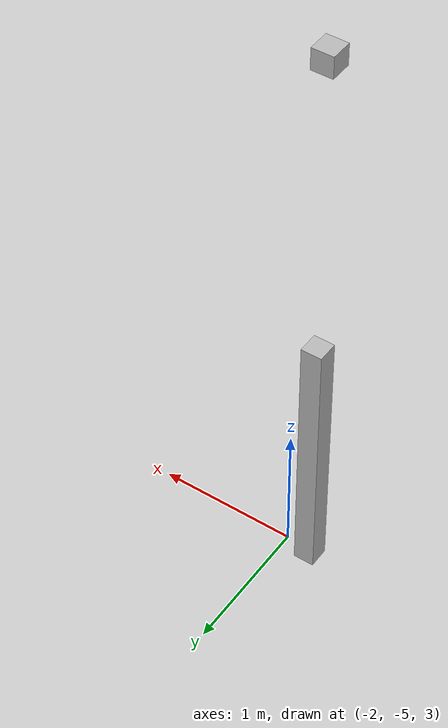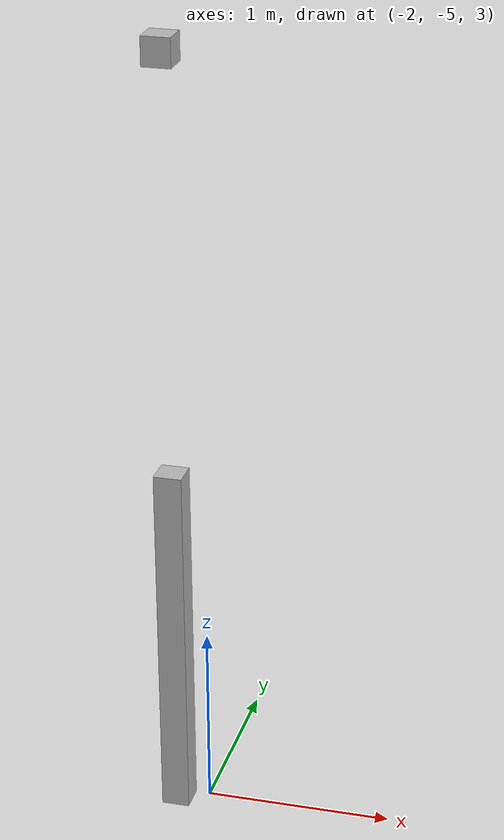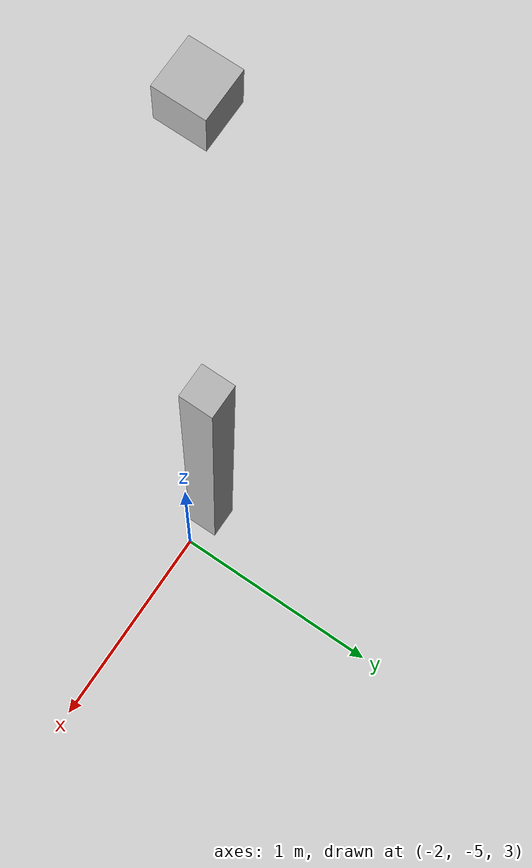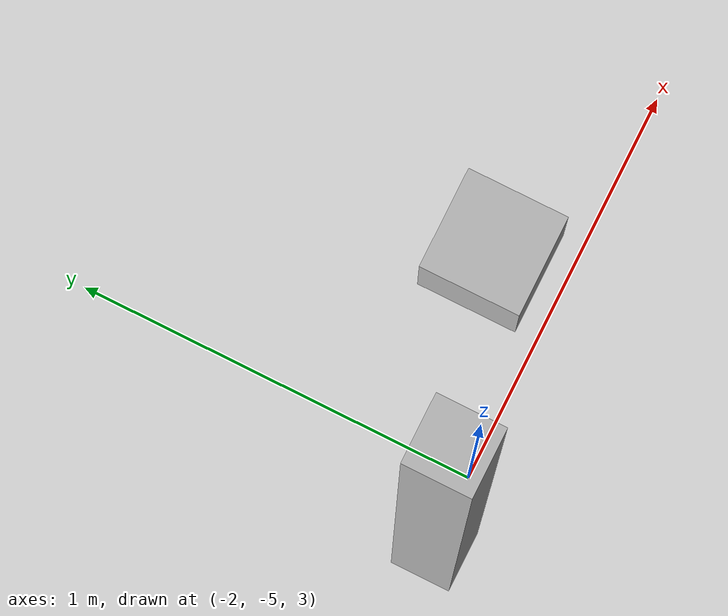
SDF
<sdf version="1.7">
 <world name="default">
  <model name="orthogonal_747_2.000.15_TS">
   <static>1</static>
   <link name="z_link_3_0_2">
    <inertial>
     <mass>1</mass>
     <inertia>
      <ixx>0.166667</ixx>
      <ixy>0</ixy>
      <ixz>0</ixz>
      <iyy>0.166667</iyy>
      <iyz>0</iyz>
      <izz>0.166667</izz>
     </inertia>
    </inertial>
    <pose>4.3 0 6.45 0 -0 0</pose>
    <visual name="visual_0">
     <laser_retro>2633</laser_retro>
     <geometry><box><size>0.15 1e-06 2</size></box></geometry>
     <material>
      <script><name>Gazebo/Grey</name><uri>file://media/materials/scripts/gazebo.material</uri></script>
      <shader type="pixel"><normal_map>__default__</normal_map></shader>
      <ambient>0.678 0.498 0.659 1</ambient>
      <diffuse>0.7 0.7 0.7 1</diffuse>
      <specular>0.01 0.01 0.01 1</specular>
      <emissive>0 0 0 1</emissive>
     </material>
     <pose>0 -0.075 0 0 -0 0</pose>
     <transparency>1</transparency>
    </visual>
    <visual name="visual_1">
     <laser_retro>2634</laser_retro>
     <geometry><box><size>0.15 1e-06 2</size></box></geometry>
     <material>
      <script><name>Gazebo/Grey</name><uri>file://media/materials/scripts/gazebo.material</uri></script>
      <shader type="pixel"><normal_map>__default__</normal_map></shader>
      <ambient>0.447 0.624 0.812 1</ambient>
      <diffuse>0.7 0.7 0.7 1</diffuse>
      <specular>0.01 0.01 0.01 1</specular>
      <emissive>0 0 0 1</emissive>
     </material>
     <pose>0 0.075 0 0 -0 0</pose>
     <transparency>1</transparency>
    </visual>
    <visual name="visual_2">
     <laser_retro>2635</laser_retro>
     <geometry><box><size>0.15 0.15 1e-06</size></box></geometry>
     <material>
      <script><name>Gazebo/Grey</name><uri>file://media/materials/scripts/gazebo.material</uri></script>
      <shader type="pixel"><normal_map>__default__</normal_map></shader>
      <ambient>0.988 0.686 0.243 1</ambient>
      <diffuse>0.7 0.7 0.7 1</diffuse>
      <specular>0.01 0.01 0.01 1</specular>
      <emissive>0 0 0 1</emissive>
     </material>
     <pose>0 0 -1 0 -0 0</pose>
     <transparency>1</transparency>
    </visual>
    <visual name="visual_3">
     <laser_retro>2636</laser_retro>
     <geometry><box><size>1e-06 0.15 2</size></box></geometry>
     <material>
      <script><name>Gazebo/Grey</name><uri>file://media/materials/scripts/gazebo.material</uri></script>
      <shader type="pixel"><normal_map>__default__</normal_map></shader>
      <ambient>0.988 0.914 0.31 1</ambient>
      <diffuse>0.7 0.7 0.7 1</diffuse>
      <specular>0.01 0.01 0.01 1</specular>
      <emissive>0 0 0 1</emissive>
     </material>
     <pose>0.075 0 0 0 -0 0</pose>
     <transparency>1</transparency>
    </visual>
    <visual name="visual_4">
     <laser_retro>2637</laser_retro>
     <geometry><box><size>0.15 0.15 1e-06</size></box></geometry>
     <material>
      <script><name>Gazebo/Grey</name><uri>file://media/materials/scripts/gazebo.material</uri></script>
      <shader type="pixel"><normal_map>__default__</normal_map></shader>
      <ambient>0.937 0.161 0.161 1</ambient>
      <diffuse>0.7 0.7 0.7 1</diffuse>
      <specular>0.01 0.01 0.01 1</specular>
      <emissive>0 0 0 1</emissive>
     </material>
     <pose>0 0 1 0 -0 0</pose>
     <transparency>1</transparency>
    </visual>
    <visual name="visual_5">
     <laser_retro>2638</laser_retro>
     <geometry><box><size>1e-06 0.15 2</size></box></geometry>
     <material>
      <script><name>Gazebo/Grey</name><uri>file://media/materials/scripts/gazebo.material</uri></script>
      <shader type="pixel"><normal_map>__default__</normal_map></shader>
      <ambient>0.541 0.886 0.204 1</ambient>
      <diffuse>0.7 0.7 0.7 1</diffuse>
      <specular>0.01 0.01 0.01 1</specular>
      <emissive>0 0 0 1</emissive>
     </material>
     <pose>-0.075 0 0 0 -0 0</pose>
     <transparency>1</transparency>
    </visual>
    <visual name="visual_texture">
     <geometry><box><size>0.149985 0.149985 1.9998</size></box></geometry>
     <material>
      <script>
       <uri>model://BASE_MODELS/simple_block_v2_textured/materials/scripts</uri>
       <uri>model://BASE_MODELS/simple_block_v2_textured/materials/textures</uri>
       <name>metal</name>
      </script>
     </material>
     <laser_retro>2639</laser_retro>
    </visual>
    <collision name="collision">
     <geometry><box><size>0.15 0.15 2</size></box></geometry>
     <surface>
      <friction>
       <ode><mu>1</mu><mu2>1</mu2><fdir1>0 0 0</fdir1><slip1>0</slip1><slip2>0</slip2></ode>
       <torsional>
        <coefficient>1</coefficient>
        <patch_radius>0</patch_radius>
        <surface_radius>0</surface_radius>
        <use_patch_radius>1</use_patch_radius>
        <ode><slip>0</slip></ode>
       </torsional>
      </friction>
      <bounce><restitution_coefficient>0</restitution_coefficient><threshold>1e+06</threshold></bounce>
      <contact>
       <collide_without_contact>0</collide_without_contact>
       <collide_without_contact_bitmask>1</collide_without_contact_bitmask>
       <collide_bitmask>1</collide_bitmask>
       <ode>
        <soft_cfm>0</soft_cfm>
        <soft_erp>0.2</soft_erp>
        <kp>1e+13</kp>
        <kd>1</kd>
        <max_vel>0.01</max_vel>
        <min_depth>0</min_depth>
       </ode>
       <bullet>
        <split_impulse>1</split_impulse>
        <split_impulse_penetration_threshold>-0.01</split_impulse_penetration_threshold>
        <soft_cfm>0</soft_cfm>
        <soft_erp>0.2</soft_erp>
        <kp>1e+13</kp>
        <kd>1</kd>
       </bullet>
      </contact>
     </surface>
    </collision>
   </link>
   <link name="u_link_4_0_2">
    <inertial>
     <mass>1</mass>
     <inertia>
      <ixx>0.166667</ixx>
      <ixy>0</ixy>
      <ixz>0</ixz>
      <iyy>0.166667</iyy>
      <iyz>0</iyz>
      <izz>0.166667</izz>
     </inertia>
    </inertial>
    <pose>4.3 0 9.675 0 -0 0</pose>
    <visual name="visual_0">
     <laser_retro>3529</laser_retro>
     <geometry><box><size>0.15 1e-06 0.15</size></box></geometry>
     <material>
      <script><name>Gazebo/Grey</name><uri>file://media/materials/scripts/gazebo.material</uri></script>
      <shader type="pixel"><normal_map>__default__</normal_map></shader>
      <ambient>0.678 0.498 0.659 1</ambient>
      <diffuse>0.7 0.7 0.7 1</diffuse>
      <specular>0.01 0.01 0.01 1</specular>
      <emissive>0 0 0 1</emissive>
     </material>
     <pose>0 -0.075 0 0 -0 0</pose>
     <transparency>1</transparency>
    </visual>
    <visual name="visual_1">
     <laser_retro>3530</laser_retro>
     <geometry><box><size>0.15 1e-06 0.15</size></box></geometry>
     <material>
      <script><name>Gazebo/Grey</name><uri>file://media/materials/scripts/gazebo.material</uri></script>
      <shader type="pixel"><normal_map>__default__</normal_map></shader>
      <ambient>0.447 0.624 0.812 1</ambient>
      <diffuse>0.7 0.7 0.7 1</diffuse>
      <specular>0.01 0.01 0.01 1</specular>
      <emissive>0 0 0 1</emissive>
     </material>
     <pose>0 0.075 0 0 -0 0</pose>
     <transparency>1</transparency>
    </visual>
    <visual name="visual_2">
     <laser_retro>3531</laser_retro>
     <geometry><box><size>0.15 0.15 1e-06</size></box></geometry>
     <material>
      <script><name>Gazebo/Grey</name><uri>file://media/materials/scripts/gazebo.material</uri></script>
      <shader type="pixel"><normal_map>__default__</normal_map></shader>
      <ambient>0.988 0.686 0.243 1</ambient>
      <diffuse>0.7 0.7 0.7 1</diffuse>
      <specular>0.01 0.01 0.01 1</specular>
      <emissive>0 0 0 1</emissive>
     </material>
     <pose>0 0 -0.075 0 -0 0</pose>
     <transparency>1</transparency>
    </visual>
    <visual name="visual_3">
     <laser_retro>3532</laser_retro>
     <geometry><box><size>1e-06 0.15 0.15</size></box></geometry>
     <material>
      <script><name>Gazebo/Grey</name><uri>file://media/materials/scripts/gazebo.material</uri></script>
      <shader type="pixel"><normal_map>__default__</normal_map></shader>
      <ambient>0.988 0.914 0.31 1</ambient>
      <diffuse>0.7 0.7 0.7 1</diffuse>
      <specular>0.01 0.01 0.01 1</specular>
      <emissive>0 0 0 1</emissive>
     </material>
     <pose>0.075 0 0 0 -0 0</pose>
     <transparency>1</transparency>
    </visual>
    <visual name="visual_4">
     <laser_retro>3533</laser_retro>
     <geometry><box><size>0.15 0.15 1e-06</size></box></geometry>
     <material>
      <script><name>Gazebo/Grey</name><uri>file://media/materials/scripts/gazebo.material</uri></script>
      <shader type="pixel"><normal_map>__default__</normal_map></shader>
      <ambient>0.937 0.161 0.161 1</ambient>
      <diffuse>0.7 0.7 0.7 1</diffuse>
      <specular>0.01 0.01 0.01 1</specular>
      <emissive>0 0 0 1</emissive>
     </material>
     <pose>0 0 0.075 0 -0 0</pose>
     <transparency>1</transparency>
    </visual>
    <visual name="visual_5">
     <laser_retro>3534</laser_retro>
     <geometry><box><size>1e-06 0.15 0.15</size></box></geometry>
     <material>
      <script><name>Gazebo/Grey</name><uri>file://media/materials/scripts/gazebo.material</uri></script>
      <shader type="pixel"><normal_map>__default__</normal_map></shader>
      <ambient>0.541 0.886 0.204 1</ambient>
      <diffuse>0.7 0.7 0.7 1</diffuse>
      <specular>0.01 0.01 0.01 1</specular>
      <emissive>0 0 0 1</emissive>
     </material>
     <pose>-0.075 0 0 0 -0 0</pose>
     <transparency>1</transparency>
    </visual>
    <visual name="visual_texture">
     <geometry><box><size>0.149985 0.149985 0.149985</size></box></geometry>
     <material>
      <script>
       <uri>model://BASE_MODELS/simple_block_v2_textured/materials/scripts</uri>
       <uri>model://BASE_MODELS/simple_block_v2_textured/materials/textures</uri>
       <name>metal</name>
      </script>
     </material>
     <laser_retro>3535</laser_retro>
    </visual>
    <collision name="collision">
     <geometry><box><size>0.15 0.15 0.15</size></box></geometry>
     <surface>
      <friction>
       <ode><mu>1</mu><mu2>1</mu2><fdir1>0 0 0</fdir1><slip1>0</slip1><slip2>0</slip2></ode>
       <torsional>
        <coefficient>1</coefficient>
        <patch_radius>0</patch_radius>
        <surface_radius>0</surface_radius>
        <use_patch_radius>1</use_patch_radius>
        <ode><slip>0</slip></ode>
       </torsional>
      </friction>
      <bounce><restitution_coefficient>0</restitution_coefficient><threshold>1e+06</threshold></bounce>
      <contact>
       <collide_without_contact>0</collide_without_contact>
       <collide_without_contact_bitmask>1</collide_without_contact_bitmask>
       <collide_bitmask>1</collide_bitmask>
       <ode>
        <soft_cfm>0</soft_cfm>
        <soft_erp>0.2</soft_erp>
        <kp>1e+13</kp>
        <kd>1</kd>
        <max_vel>0.01</max_vel>
        <min_depth>0</min_depth>
       </ode>
       <bullet>
        <split_impulse>1</split_impulse>
        <split_impulse_penetration_threshold>-0.01</split_impulse_penetration_threshold>
        <soft_cfm>0</soft_cfm>
        <soft_erp>0.2</soft_erp>
        <kp>1e+13</kp>
        <kd>1</kd>
       </bullet>
      </contact>
     </surface>
    </collision>
   </link>
   <pose>-6.47624 -5 -2.5 0 -0 0</pose>
  </model>
 </world>
</sdf>
